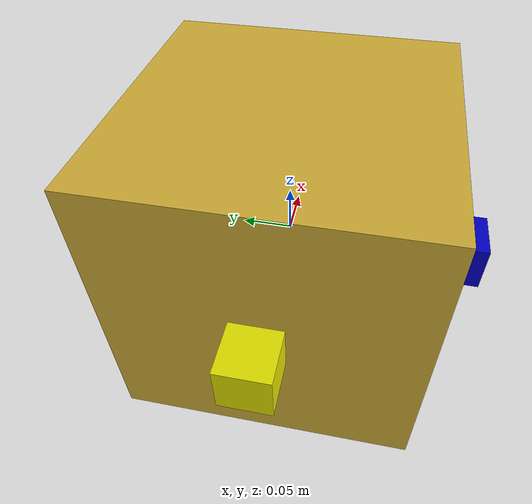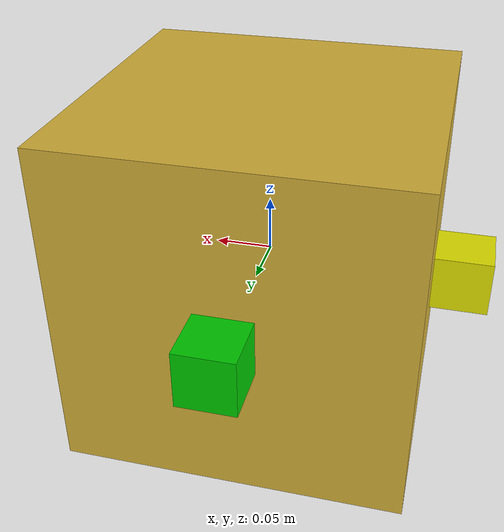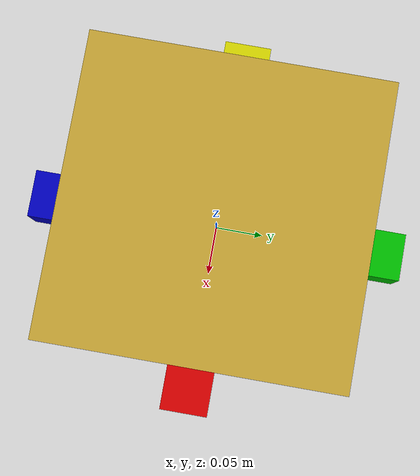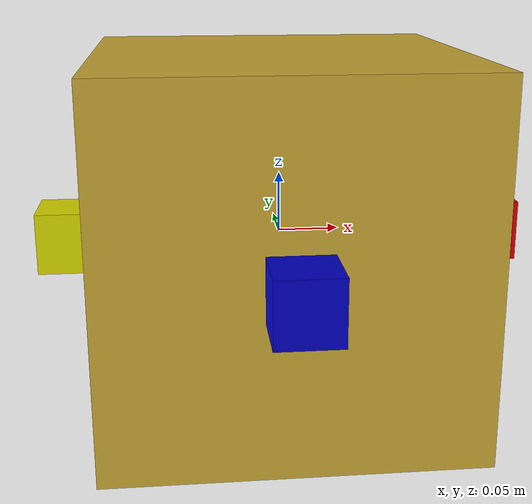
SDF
<?xml version="1.0" ?>
<sdf version="1.6">
  <world name="space">
    <gravity>0 0 0</gravity>

    <include>
      <uri>model://sun</uri>
    </include>

    <scene>
      <ambient>0.4 0.4 0.4 1</ambient>
      <background>0.2 0.2 0.2 1</background>
    </scene>

    <include>
      <uri>model://spacecraft</uri>
      <name>spacecraft</name>
      <pose>0 0 0 0 0 0</pose>
    </include>

  </world>
</sdf>

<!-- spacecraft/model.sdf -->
<sdf version='1.7'>
  <model name='spacecraft'>
    <link name='base_link'>
      ...
      <visual name='base_link_visual'>
        <pose>0 0 0 0 -0 0</pose>
        <geometry>
          <box>
            <size>0.3 0.3 0.3</size>
          </box>
        </geometry>
        <material>
          <ambient>0.83 0.69 0.22 1</ambient>
          <diffuse>0.83 0.69 0.22 1</diffuse>
          <specular>0.9 0.9 0.9 1</specular>
          <emissive>0 0 0 1</emissive>
        </material>
      </visual>

      <!-- 🔵 Back Thruster: Blue -->
      <visual name='base_link_fixed_joint_lump__thruster_back_link_visual_1'>
        <pose>0 -0.175 0 0 -0 3.1415</pose>
        <geometry>
          <box>
            <size>0.05 0.05 0.05</size>
          </box>
        </geometry>
        <material>
          <ambient>0 0 0.8 1</ambient>
          <diffuse>0 0 0.8 1</diffuse>
        </material>
      </visual>

      <!-- 🟢 Front Thruster: Green -->
      <visual name='base_link_fixed_joint_lump__thruster_front_link_visual_2'>
        <pose>0 0.175 0 0 -0 0</pose>
        <geometry>
          <box>
            <size>0.05 0.05 0.05</size>
          </box>
        </geometry>
        <material>
          <ambient>0 0.8 0 1</ambient>
          <diffuse>0 0.8 0 1</diffuse>
        </material>
      </visual>

      <!-- 🟡 Left Thruster: Yellow -->
      <visual name='base_link_fixed_joint_lump__thruster_left_link_visual_3'>
        <pose>-0.175 0 0 0 -0 1.5707</pose>
        <geometry>
          <box>
            <size>0.05 0.05 0.05</size>
          </box>
        </geometry>
        <material>
          <ambient>0.9 0.9 0 1</ambient>
          <diffuse>0.9 0.9 0 1</diffuse>
        </material>
      </visual>

      <!-- 🔴 Right Thruster: Red -->
      <visual name='base_link_fixed_joint_lump__thruster_right_link_visual_4'>
        <pose>0.175 0 0 0 0 -1.5707</pose>
        <geometry>
          <box>
            <size>0.05 0.05 0.05</size>
          </box>
        </geometry>
        <material>
          <ambient>0.9 0 0 1</ambient>
          <diffuse>0.9 0 0 1</diffuse>
        </material>
      </visual>
    </link>

    <plugin filename='libapply_force_plugin.so' name='apply_force_plugin_front'>
        <thruster_name>front</thruster_name>
        <mounting_point>0 0.1725 0</mounting_point>
        <possible_directions>1 0 1</possible_directions>
        <force>1</force>
        <min_duration>0.1</min_duration>
    </plugin>

    <plugin filename="libapply_force_plugin.so" name="apply_force_plugin_back">
      <thruster_name>back</thruster_name>
      <mounting_point>0 -0.1725 0</mounting_point>  <!-- Opposite of front -->
      <possible_directions>-1 0 1</possible_directions> <!-- Opposite X (assuming body-forward is +X) -->
      <force>1</force>
      <min_duration>0.1</min_duration>
    </plugin>

    <plugin filename="libapply_force_plugin.so" name="apply_force_plugin_left">
      <thruster_name>left</thruster_name>
      <mounting_point>-0.1725 0 0</mounting_point>
      <possible_directions>0 1 1</possible_directions>  <!-- Lateral force to the left -->
      <force>1</force>
      <min_duration>0.1</min_duration>
    </plugin>

    <plugin filename="libapply_force_plugin.so" name="apply_force_plugin_right">
      <thruster_name>right</thruster_name>
      <mounting_point>0.1725 0 0</mounting_point>
      <possible_directions>0 -1 1</possible_directions> <!-- Lateral force to the right -->
      <force>1</force>
      <min_duration>0.1</min_duration>
    </plugin>

  </model>
</sdf>
